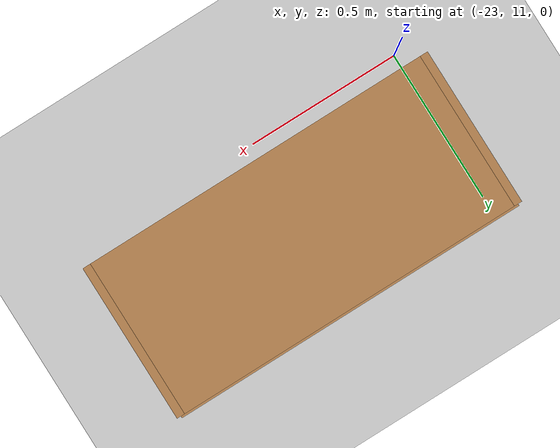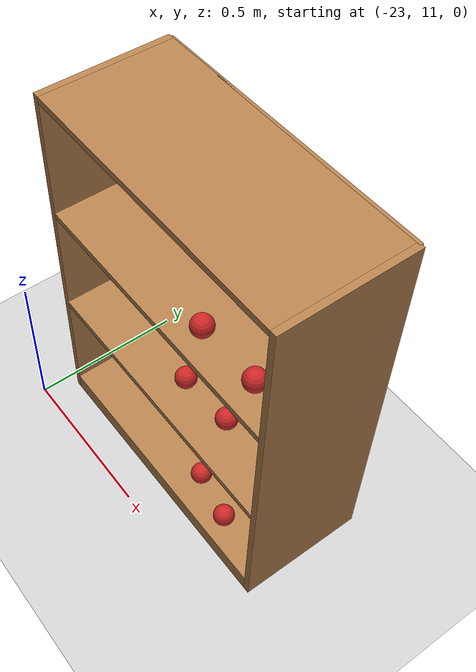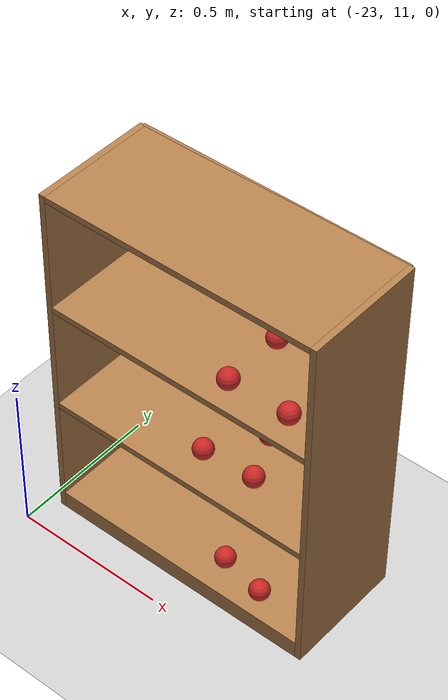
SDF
<sdf version="1.7">
 <world name="default">
  <model name="ground_plane">
   <static>1</static>
   <link name="link">
    <collision name="collision">
     <geometry><plane><normal>0 0 1</normal><size>100 100</size></plane></geometry>
     <surface>
      <contact><collide_bitmask>65535</collide_bitmask></contact>
      <friction><ode><mu>100</mu><mu2>50</mu2></ode></friction>
     </surface>
    </collision>
    <visual name="visual">
     <cast_shadows>0</cast_shadows>
     <geometry><plane><normal>0 0 1</normal><size>100 100</size></plane></geometry>
     <material>
      <script><uri>file://media/materials/scripts/gazebo.material</uri><name>Gazebo/Grey</name></script>
     </material>
    </visual>
   </link>
  </model>
  <model name="bookshelf_clone_clone_0">
   <static>1</static>
   <link name="link">
    <inertial><mass>1</mass></inertial>
    <collision name="back">
     <pose>0 0.005 0.6 0 -0 0</pose>
     <geometry><box><size>0.9 0.01 1.2</size></box></geometry>
    </collision>
    <visual name="visual1">
     <pose>0 0.005 0.6 0 -0 0</pose>
     <geometry><box><size>0.9 0.01 1.2</size></box></geometry>
     <material>
      <script><uri>file://media/materials/scripts/gazebo.material</uri><name>Gazebo/Wood</name></script>
     </material>
    </visual>
    <collision name="left_side">
     <pose>0.45 -0.195 0.6 0 -0 0</pose>
     <geometry><box><size>0.02 0.4 1.2</size></box></geometry>
    </collision>
    <visual name="visual2">
     <pose>0.45 -0.195 0.6 0 -0 0</pose>
     <geometry><box><size>0.02 0.4 1.2</size></box></geometry>
     <material>
      <script><uri>file://media/materials/scripts/gazebo.material</uri><name>Gazebo/Wood</name></script>
     </material>
    </visual>
    <collision name="right_side">
     <pose>-0.45 -0.195 0.6 0 -0 0</pose>
     <geometry><box><size>0.02 0.4 1.2</size></box></geometry>
    </collision>
    <visual name="visual3">
     <pose>-0.45 -0.195 0.6 0 -0 0</pose>
     <geometry><box><size>0.02 0.4 1.2</size></box></geometry>
     <material>
      <script><uri>file://media/materials/scripts/gazebo.material</uri><name>Gazebo/Wood</name></script>
     </material>
    </visual>
    <collision name="bottom">
     <pose>0 -0.195 0.03 0 -0 0</pose>
     <geometry><box><size>0.88 0.4 0.06</size></box></geometry>
    </collision>
    <visual name="visual4">
     <pose>0 -0.195 0.03 0 -0 0</pose>
     <geometry><box><size>0.88 0.4 0.06</size></box></geometry>
     <material>
      <script><uri>file://media/materials/scripts/gazebo.material</uri><name>Gazebo/Wood</name></script>
     </material>
    </visual>
    <collision name="top">
     <pose>0 -0.195 1.19 0 -0 0</pose>
     <geometry><box><size>0.88 0.4 0.02</size></box></geometry>
    </collision>
    <visual name="visual5">
     <pose>0 -0.195 1.19 0 -0 0</pose>
     <geometry><box><size>0.88 0.4 0.02</size></box></geometry>
     <material>
      <script><uri>file://media/materials/scripts/gazebo.material</uri><name>Gazebo/Wood</name></script>
     </material>
    </visual>
    <collision name="low_shelf">
     <pose>0 -0.195 0.43 0 -0 0</pose>
     <geometry><box><size>0.88 0.4 0.02</size></box></geometry>
    </collision>
    <visual name="visual6">
     <pose>0 -0.195 0.43 0 -0 0</pose>
     <geometry><box><size>0.88 0.4 0.02</size></box></geometry>
     <material>
      <script><uri>file://media/materials/scripts/gazebo.material</uri><name>Gazebo/Wood</name></script>
     </material>
    </visual>
    <collision name="high_shelf">
     <pose>0 -0.195 0.8 0 -0 0</pose>
     <geometry><box><size>0.88 0.4 0.02</size></box></geometry>
    </collision>
    <visual name="visual7">
     <pose>0 -0.195 0.8 0 -0 0</pose>
     <geometry><box><size>0.88 0.4 0.02</size></box></geometry>
     <material>
      <script><uri>file://media/materials/scripts/gazebo.material</uri><name>Gazebo/Wood</name></script>
     </material>
    </visual>
   </link>
   <pose>-22.5 11.5 0 0 -0 0</pose>
  </model>
  <model name="RoboCup SPL Ball_clone_clone_2_clone_0_clone_1">
   <static>0</static>
   <link name="ball">
    <inertial>
     <mass>0.0056</mass>
     <inertia>
      <ixx>2.37e-06</ixx>
      <iyy>2.37e-06</iyy>
      <izz>2.37e-06</izz>
      <ixy>0</ixy>
      <ixz>0</ixz>
      <iyz>0</iyz>
     </inertia>
    </inertial>
    <collision name="collision"><geometry><sphere><radius>0.0325</radius></sphere></geometry></collision>
    <visual name="visual">
     <geometry><sphere><radius>0.0325</radius></sphere></geometry>
     <material>
      <script><uri>file://media/materials/scripts/gazebo.material</uri><name>Gazebo/RedBright</name></script>
     </material>
    </visual>
   </link>
   <pose>-22.3753 11.3855 0.8425 0.062088 -0 0</pose>
  </model>
  <model name="RoboCup SPL Ball_clone_clone_2_clone_0_clone_2">
   <static>0</static>
   <link name="ball">
    <inertial>
     <mass>0.0056</mass>
     <inertia>
      <ixx>2.37e-06</ixx>
      <iyy>2.37e-06</iyy>
      <izz>2.37e-06</izz>
      <ixy>0</ixy>
      <ixz>0</ixz>
      <iyz>0</iyz>
     </inertia>
    </inertial>
    <collision name="collision"><geometry><sphere><radius>0.0325</radius></sphere></geometry></collision>
    <visual name="visual">
     <geometry><sphere><radius>0.0325</radius></sphere></geometry>
     <material>
      <script><uri>file://media/materials/scripts/gazebo.material</uri><name>Gazebo/RedBright</name></script>
     </material>
    </visual>
   </link>
   <pose>-22.175 11.3884 0.8425 0.062088 -0 0</pose>
  </model>
  <model name="RoboCup SPL Ball_clone_clone_2_clone_0_clone_3">
   <static>0</static>
   <link name="ball">
    <inertial>
     <mass>0.0056</mass>
     <inertia>
      <ixx>2.37e-06</ixx>
      <iyy>2.37e-06</iyy>
      <izz>2.37e-06</izz>
      <ixy>0</ixy>
      <ixz>0</ixz>
      <iyz>0</iyz>
     </inertia>
    </inertial>
    <collision name="collision"><geometry><sphere><radius>0.0325</radius></sphere></geometry></collision>
    <visual name="visual">
     <geometry><sphere><radius>0.0325</radius></sphere></geometry>
     <material>
      <script><uri>file://media/materials/scripts/gazebo.material</uri><name>Gazebo/RedBright</name></script>
     </material>
    </visual>
   </link>
   <pose>-22.1735 11.1831 0.8425 0.062088 -0 0</pose>
  </model>
  <model name="RoboCup SPL Ball_clone_clone_2_clone_0_clone_4">
   <static>0</static>
   <link name="ball">
    <inertial>
     <mass>0.0056</mass>
     <inertia>
      <ixx>2.37e-06</ixx>
      <iyy>2.37e-06</iyy>
      <izz>2.37e-06</izz>
      <ixy>0</ixy>
      <ixz>0</ixz>
      <iyz>0</iyz>
     </inertia>
    </inertial>
    <collision name="collision"><geometry><sphere><radius>0.0325</radius></sphere></geometry></collision>
    <visual name="visual">
     <geometry><sphere><radius>0.0325</radius></sphere></geometry>
     <material>
      <script><uri>file://media/materials/scripts/gazebo.material</uri><name>Gazebo/RedBright</name></script>
     </material>
    </visual>
   </link>
   <pose>-22.3743 11.1797 0.8425 0.062088 -0 0</pose>
  </model>
  <model name="RoboCup SPL Ball_clone_clone_6">
   <static>0</static>
   <link name="ball">
    <inertial>
     <mass>0.0056</mass>
     <inertia>
      <ixx>2.37e-06</ixx>
      <iyy>2.37e-06</iyy>
      <izz>2.37e-06</izz>
      <ixy>0</ixy>
      <ixz>0</ixz>
      <iyz>0</iyz>
     </inertia>
    </inertial>
    <collision name="collision"><geometry><sphere><radius>0.0325</radius></sphere></geometry></collision>
    <visual name="visual">
     <geometry><sphere><radius>0.0325</radius></sphere></geometry>
     <material>
      <script><uri>file://media/materials/scripts/gazebo.material</uri><name>Gazebo/RedBright</name></script>
     </material>
    </visual>
   </link>
   <pose>-22.3811 11.3753 0.4725 0.062088 -0 0</pose>
  </model>
  <model name="RoboCup SPL Ball_clone_clone_7">
   <static>0</static>
   <link name="ball">
    <inertial>
     <mass>0.0056</mass>
     <inertia>
      <ixx>2.37e-06</ixx>
      <iyy>2.37e-06</iyy>
      <izz>2.37e-06</izz>
      <ixy>0</ixy>
      <ixz>0</ixz>
      <iyz>0</iyz>
     </inertia>
    </inertial>
    <collision name="collision"><geometry><sphere><radius>0.0325</radius></sphere></geometry></collision>
    <visual name="visual">
     <geometry><sphere><radius>0.0325</radius></sphere></geometry>
     <material>
      <script><uri>file://media/materials/scripts/gazebo.material</uri><name>Gazebo/RedBright</name></script>
     </material>
    </visual>
   </link>
   <pose>-22.1988 11.3932 0.4725 0.062088 -0 0</pose>
  </model>
  <model name="RoboCup SPL Ball_clone_clone_8">
   <static>0</static>
   <link name="ball">
    <inertial>
     <mass>0.0056</mass>
     <inertia>
      <ixx>2.37e-06</ixx>
      <iyy>2.37e-06</iyy>
      <izz>2.37e-06</izz>
      <ixy>0</ixy>
      <ixz>0</ixz>
      <iyz>0</iyz>
     </inertia>
    </inertial>
    <collision name="collision"><geometry><sphere><radius>0.0325</radius></sphere></geometry></collision>
    <visual name="visual">
     <geometry><sphere><radius>0.0325</radius></sphere></geometry>
     <material>
      <script><uri>file://media/materials/scripts/gazebo.material</uri><name>Gazebo/RedBright</name></script>
     </material>
    </visual>
   </link>
   <pose>-22.3141 11.2213 0.4725 0.062088 -0 0</pose>
  </model>
  <model name="RoboCup SPL Ball_clone_clone_9">
   <static>0</static>
   <link name="ball">
    <inertial>
     <mass>0.0056</mass>
     <inertia>
      <ixx>2.37e-06</ixx>
      <iyy>2.37e-06</iyy>
      <izz>2.37e-06</izz>
      <ixy>0</ixy>
      <ixz>0</ixz>
      <iyz>0</iyz>
     </inertia>
    </inertial>
    <collision name="collision"><geometry><sphere><radius>0.0325</radius></sphere></geometry></collision>
    <visual name="visual">
     <geometry><sphere><radius>0.0325</radius></sphere></geometry>
     <material>
      <script><uri>file://media/materials/scripts/gazebo.material</uri><name>Gazebo/RedBright</name></script>
     </material>
    </visual>
   </link>
   <pose>-22.4884 11.2126 0.4725 0.062088 -0 0</pose>
  </model>
  <model name="RoboCup SPL Ball_clone_1_clone_1">
   <static>0</static>
   <link name="ball">
    <inertial>
     <mass>0.0056</mass>
     <inertia>
      <ixx>2.37e-06</ixx>
      <iyy>2.37e-06</iyy>
      <izz>2.37e-06</izz>
      <ixy>0</ixy>
      <ixz>0</ixz>
      <iyz>0</iyz>
     </inertia>
    </inertial>
    <collision name="collision"><geometry><sphere><radius>0.0325</radius></sphere></geometry></collision>
    <visual name="visual">
     <geometry><sphere><radius>0.0325</radius></sphere></geometry>
     <material>
      <script><uri>file://media/materials/scripts/gazebo.material</uri><name>Gazebo/RedBright</name></script>
     </material>
    </visual>
   </link>
   <pose>-22.38 11.3896 0.0925 0.062087 -0 0</pose>
  </model>
  <model name="RoboCup SPL Ball_clone_1_clone_2">
   <static>0</static>
   <link name="ball">
    <inertial>
     <mass>0.0056</mass>
     <inertia>
      <ixx>2.37e-06</ixx>
      <iyy>2.37e-06</iyy>
      <izz>2.37e-06</izz>
      <ixy>0</ixy>
      <ixz>0</ixz>
      <iyz>0</iyz>
     </inertia>
    </inertial>
    <collision name="collision"><geometry><sphere><radius>0.0325</radius></sphere></geometry></collision>
    <visual name="visual">
     <geometry><sphere><radius>0.0325</radius></sphere></geometry>
     <material>
      <script><uri>file://media/materials/scripts/gazebo.material</uri><name>Gazebo/RedBright</name></script>
     </material>
    </visual>
   </link>
   <pose>-22.1814 11.3753 0.0925 0.062087 -0 0</pose>
  </model>
  <model name="RoboCup SPL Ball_clone_1_clone_3">
   <static>0</static>
   <link name="ball">
    <inertial>
     <mass>0.0056</mass>
     <inertia>
      <ixx>2.37e-06</ixx>
      <iyy>2.37e-06</iyy>
      <izz>2.37e-06</izz>
      <ixy>0</ixy>
      <ixz>0</ixz>
      <iyz>0</iyz>
     </inertia>
    </inertial>
    <collision name="collision"><geometry><sphere><radius>0.0325</radius></sphere></geometry></collision>
    <visual name="visual">
     <geometry><sphere><radius>0.0325</radius></sphere></geometry>
     <material>
      <script><uri>file://media/materials/scripts/gazebo.material</uri><name>Gazebo/RedBright</name></script>
     </material>
    </visual>
   </link>
   <pose>-22.2417 11.1692 0.0925 0.062087 -0 0</pose>
  </model>
  <model name="RoboCup SPL Ball_clone_1_clone_4">
   <static>0</static>
   <link name="ball">
    <inertial>
     <mass>0.0056</mass>
     <inertia>
      <ixx>2.37e-06</ixx>
      <iyy>2.37e-06</iyy>
      <izz>2.37e-06</izz>
      <ixy>0</ixy>
      <ixz>0</ixz>
      <iyz>0</iyz>
     </inertia>
    </inertial>
    <collision name="collision"><geometry><sphere><radius>0.0325</radius></sphere></geometry></collision>
    <visual name="visual">
     <geometry><sphere><radius>0.0325</radius></sphere></geometry>
     <material>
      <script><uri>file://media/materials/scripts/gazebo.material</uri><name>Gazebo/RedBright</name></script>
     </material>
    </visual>
   </link>
   <pose>-22.394 11.2002 0.0925 0.062087 -0 0</pose>
  </model>
 </world>
</sdf>
